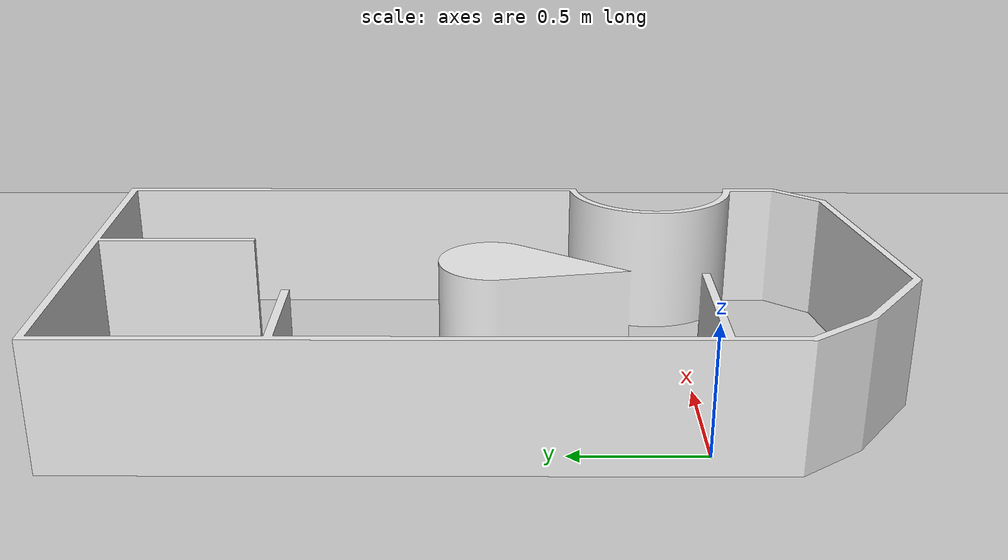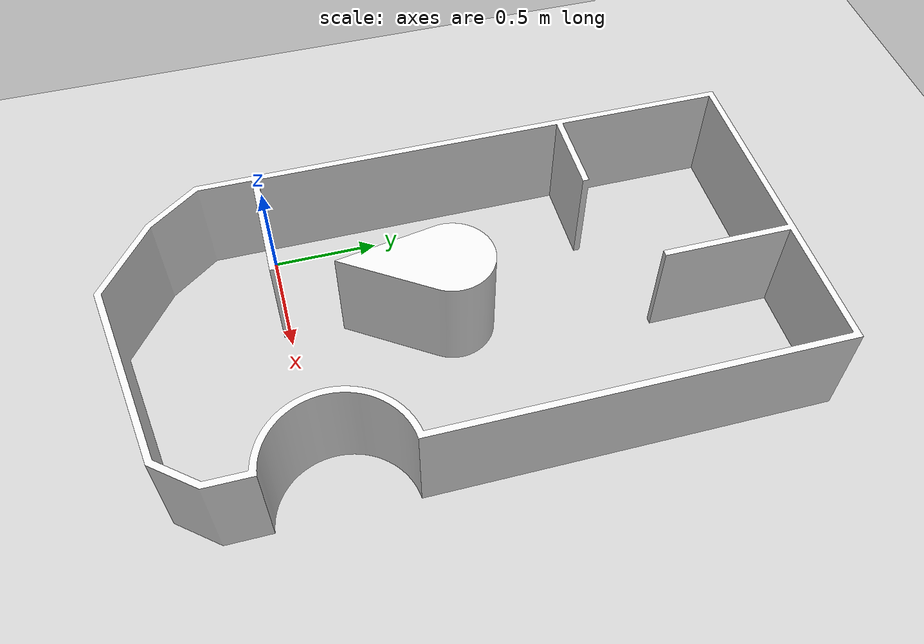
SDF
<sdf version='1.4'>
  <world name='default'>
    <!-- A global light source -->
    <include>
      <uri>model://sun</uri>
    </include>

    <!-- A ground plane -->
    <include>
      <uri>model://ground_plane</uri>
    </include>

    <physics type="ode">
      <real_time_update_rate>1000.0</real_time_update_rate>
      <max_step_size>0.001</max_step_size>
      <real_time_factor>1</real_time_factor>
      <ode>
        <solver>
          <type>quick</type>
          <iters>150</iters>
          <precon_iters>0</precon_iters>
          <sor>1.400000</sor>
          <use_dynamic_moi_rescaling>1</use_dynamic_moi_rescaling>
        </solver>
        <constraints>
          <cfm>0.00001</cfm>
          <erp>0.2</erp>
          <contact_max_correcting_vel>2000.000000</contact_max_correcting_vel>
          <contact_surface_layer>0.01000</contact_surface_layer>
        </constraints>
      </ode>
    </physics>

    <include>
      <uri>model://tortleboat_world</uri>
    </include>

    <scene>
      <ambient>0.4 0.4 0.4 1</ambient>
      <background>0.7 0.7 0.7 1</background>
      <shadows>true</shadows>
    </scene>

    <gui fullscreen='0'>
      <camera name='user_camera'>
        <pose>0.8 0.0 12.0 0 1.5708 0</pose>
        <view_controller>orbit</view_controller>
      </camera>
    </gui>
  </world>
</sdf>

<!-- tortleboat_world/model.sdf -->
<sdf version='1.7'>
  <model name='tortleboat_world'>
    <link name='link_0'>
      <inertial>
        <mass>1</mass>
        <inertia>
          <ixx>0.166667</ixx>
          <ixy>0</ixy>
          <ixz>0</ixz>
          <iyy>0.166667</iyy>
          <iyz>0</iyz>
          <izz>0.166667</izz>
        </inertia>
        <pose>0 0 0 0 -0 0</pose>
      </inertial>
      <pose>-0 0 0 0 -0 1.57</pose>
      <gravity>1</gravity>
      <self_collide>0</self_collide>
      <kinematic>0</kinematic>
      <enable_wind>0</enable_wind>
      <visual name='visual'>
        <pose>0 0 0 0 -0 0</pose>
        <geometry>
          <mesh>
            <uri>./torleboat_m.stl</uri>
            <scale>1 1 1</scale>
          </mesh>
        </geometry>
        <material>
          <lighting>1</lighting>
          <script>
            <uri>file://media/materials/scripts/gazebo.material</uri>
            <name>Gazebo/White</name>
          </script>
          <shader type='pixel'>
            <normal_map>__default__</normal_map>
          </shader>
        </material>
        <transparency>0</transparency>
        <cast_shadows>1</cast_shadows>
      </visual>
      <collision name='collision'>
        <laser_retro>0</laser_retro>
        <max_contacts>10</max_contacts>
        <pose>0 0 0 0 -0 0</pose>
        <geometry>
          <mesh>
            <uri>./torleboat_m.stl</uri>
            <scale>1 1 1</scale>
          </mesh>
        </geometry>
        <surface>
          <friction>
            <ode>
              <mu>1</mu>
              <mu2>1</mu2>
              <fdir1>0 0 0</fdir1>
              <slip1>0</slip1>
              <slip2>0</slip2>
            </ode>
            <torsional>
              <coefficient>1</coefficient>
              <patch_radius>0</patch_radius>
              <surface_radius>0</surface_radius>
              <use_patch_radius>1</use_patch_radius>
              <ode>
                <slip>0</slip>
              </ode>
            </torsional>
          </friction>
          <bounce>
            <restitution_coefficient>0</restitution_coefficient>
            <threshold>1e+06</threshold>
          </bounce>
          <contact>
            <collide_without_contact>0</collide_without_contact>
            <collide_without_contact_bitmask>1</collide_without_contact_bitmask>
            <collide_bitmask>1</collide_bitmask>
            <ode>
              <soft_cfm>0</soft_cfm>
              <soft_erp>0.2</soft_erp>
              <kp>1e+13</kp>
              <kd>1</kd>
              <max_vel>0.01</max_vel>
              <min_depth>0</min_depth>
            </ode>
            <bullet>
              <split_impulse>1</split_impulse>
              <split_impulse_penetration_threshold>-0.01</split_impulse_penetration_threshold>
              <soft_cfm>0</soft_cfm>
              <soft_erp>0.2</soft_erp>
              <kp>1e+13</kp>
              <kd>1</kd>
            </bullet>
          </contact>
        </surface>
      </collision>
    </link>
    <static>0</static>
    <allow_auto_disable>1</allow_auto_disable>
  </model>
</sdf>
